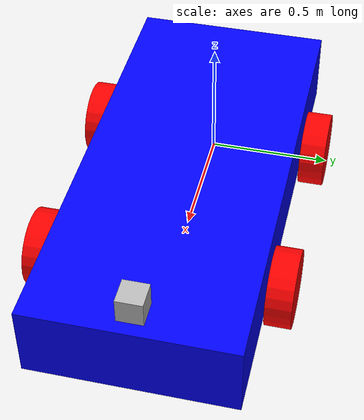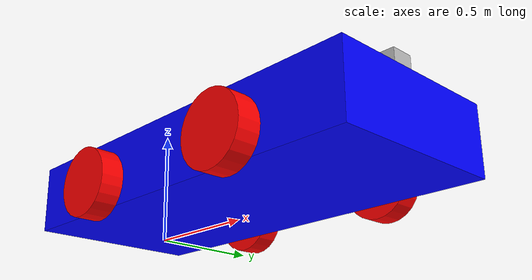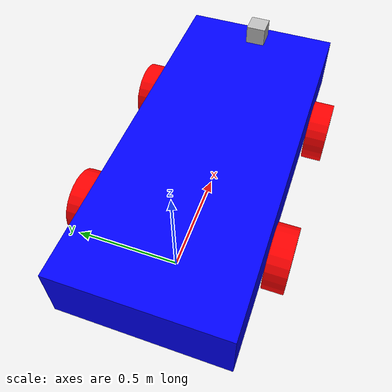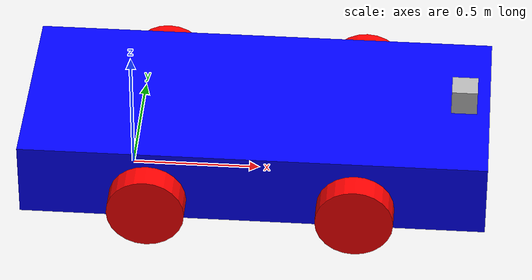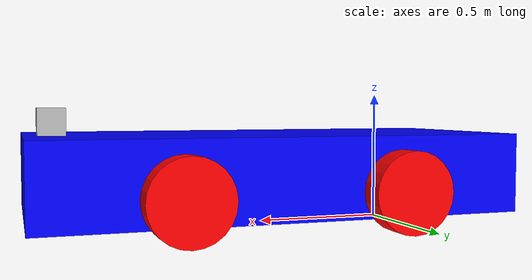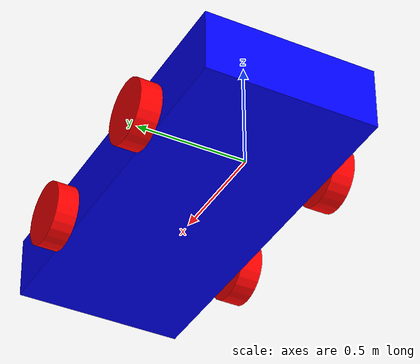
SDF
<?xml version="1.0" ?>
<sdf version="1.9">
        <plugin filename="libignition-gazebo-imu-system.so"
                name="ignition::gazebo::systems::Imu">
        </plugin>

        <plugin filename="libignition-gazebo-contact-system.so"
            name="ignition::gazebo::systems::Contact">
        </plugin>

        <plugin filename="libignition-gazebo-triggered-publisher-system.so"
        name="ignition::gazebo::systems::TriggeredPublisher">
        </plugin>

        <model name='vehicle_blue' canonical_link='base_link'>
            <frame name="lidar_frame" attached_to='base_link'>
                <pose>0.8 0 0.5 0 0 0</pose>
            </frame>

            <link name='base_link'>
                <pose relative_to='__model__'>0.5 0 0.2 0 0 0</pose>
                    <inertial> <!--inertial properties of the link mass, inertia matix-->
                        <mass>1.14395</mass>
                        <inertia>
                            <ixx>0.095329</ixx>
                            <ixy>0</ixy>
                            <ixz>0</ixz>
                            <iyy>0.381317</iyy>
                            <iyz>0</iyz>
                            <izz>0.476646</izz>
                        </inertia>
                    </inertial>
                    <visual name='visual'>
                        <geometry>
                            <box>
                                <size>1.8 0.8 0.3</size>
                            </box>
                        </geometry>
                        <!--let's add color to our link-->
                        <material>
                            <ambient>0.0 0.0 1.0 1</ambient>
                            <diffuse>0.0 0.0 1.0 1</diffuse>
                            <specular>0.0 0.0 1.0 1</specular>
                        </material>
                    </visual>
                    <collision name='collision'>
                        <geometry>
                            <box>
                                <size>1.8 0.8 0.3</size>
                            </box>
                        </geometry>
                    </collision>
                    <sensor name="imu_sensor" type="imu">
                        <always_on>1</always_on>
                        <update_rate>1</update_rate>
                        <visualize>true</visualize>
                        <topic>imu</topic>
                    </sensor>

                    <sensor name='gpu_lidar' type='gpu_lidar'>"
                        <pose relative_to='lidar_frame'>0 0 0 0 0 0</pose>
                        <topic>lidar</topic>
                        <update_rate>10</update_rate>
                        <ray>
                            <scan>
                                <horizontal>
                                    <samples>640</samples>
                                    <resolution>1</resolution>
                                    <min_angle>-1.396263</min_angle>
                                    <max_angle>1.396263</max_angle>
                                </horizontal>
                                <vertical>
                                    <samples>1</samples>
                                    <resolution>0.01</resolution>
                                    <min_angle>0</min_angle>
                                    <max_angle>0</max_angle>
                                </vertical>
                            </scan>
                            <range>
                                <min>0.08</min>
                                <max>10.0</max>
                                <resolution>0.01</resolution>
                            </range>
                        </ray>
                        <always_on>1</always_on>
                        <visualize>true</visualize>
                    </sensor>
                </link>

                <link name="camera_link">
                    <pose relative_to='base_link'>0.8 0.0 0.2 0 0 0</pose>
                    <inertial>
                        <mass>0.1</mass>
                        <inertia>
                            <ixx>0.000166667</ixx>
                            <iyy>0.000166667</iyy>
                            <izz>0.000166667</izz>
                        </inertia>
                    </inertial>

                    <collision name="collision">
                        <geometry>
                            <box>
                                <size>0.1 0.1 0.1</size>
                            </box>
                        </geometry>
                    </collision>
                    <visual name="visual">
                        <geometry>
                            <box>
                                <size>0.1 0.1 0.1</size>
                            </box>
                        </geometry>
                    </visual>

                    <sensor name="camera" type="camera">
                        <camera>
                            <horizontal_fov>1.047</horizontal_fov>
                            <image>
                                <width>380</width>
                                <height>240</height>
                            </image>
                            <clip>
                                <near>0.1</near>
                                <far>100</far>
                            </clip>
                        </camera>
                        <always_on>1</always_on>
                        <update_rate>30</update_rate>
                        <visualize>true</visualize>
                        <topic>camera</topic>
                    </sensor>
                </link>

                <joint name='camera' type='fixed'>
                    <parent>base_link</parent>
                    <child>camera_link</child>
                </joint>

                <link name='left_wheel1'>
                    <pose relative_to="base_link">-0.4 0.46 -0.05 -1.5707 0 0</pose>
                    <inertial>
                        <mass>1</mass>
                        <inertia>
                            <ixx>0.043333</ixx>
                            <ixy>0</ixy>
                            <ixz>0</ixz>
                            <iyy>0.043333</iyy>
                            <iyz>0</iyz>
                            <izz>0.08</izz>
                        </inertia>
                    </inertial>
                    <visual name='visual'>
                        <geometry>
                            <cylinder>
                                <radius>0.15</radius>
                                <length>0.10</length>
                            </cylinder>
                        </geometry>
                        <material>
                            <ambient>1.0 0.0 0.0 1</ambient>
                            <diffuse>1.0 0.0 0.0 1</diffuse>
                            <specular>1.0 0.0 0.0 1</specular>
                        </material>
                    </visual>
                    <collision name='collision'>
                        <geometry>
                            <cylinder>
                                <radius>0.15</radius>
                                <length>0.10</length>
                            </cylinder>
                        </geometry>
                    </collision>
                </link>

                <!--The same as left wheel but with different position-->
                <link name='right_wheel1'>
                    <pose relative_to="base_link">-0.4 -0.46 -0.05 -1.5707 0 0</pose> <!--angles are in radian-->
                    <inertial>
                        <mass>1</mass>
                        <inertia>
                            <ixx>0.043333</ixx>
                            <ixy>0</ixy>
                            <ixz>0</ixz>
                            <iyy>0.043333</iyy>
                            <iyz>0</iyz>
                            <izz>0.08</izz>
                        </inertia>
                    </inertial>
                    <visual name='visual'>
                        <geometry>
                            <cylinder>
                                <radius>0.15</radius>
                                <length>0.10</length>
                            </cylinder>
                        </geometry>
                        <material>
                            <ambient>1.0 0.0 0.0 1</ambient>
                            <diffuse>1.0 0.0 0.0 1</diffuse>
                            <specular>1.0 0.0 0.0 1</specular>
                        </material>
                    </visual>
                    <collision name='collision'>
                        <geometry>
                            <cylinder>
                                <radius>0.15</radius>
                                <length>0.10</length>
                            </cylinder>
                        </geometry>
                    </collision>
                </link>

                <link name='right_wheel2'>
                    <pose relative_to="base_link">0.4 -0.46 -0.05 -1.5707 0 0</pose> <!--angles are in radian-->
                    <inertial>
                        <mass>1</mass>
                        <inertia>
                            <ixx>0.043333</ixx>
                            <ixy>0</ixy>
                            <ixz>0</ixz>
                            <iyy>0.043333</iyy>
                            <iyz>0</iyz>
                            <izz>0.08</izz>
                        </inertia>
                    </inertial>
                    <visual name='visual'>
                        <geometry>
                            <cylinder>
                                <radius>0.15</radius>
                                <length>0.10</length>
                            </cylinder>
                        </geometry>
                        <material>
                            <ambient>1.0 0.0 0.0 1</ambient>
                            <diffuse>1.0 0.0 0.0 1</diffuse>
                            <specular>1.0 0.0 0.0 1</specular>
                        </material>
                    </visual>
                    <collision name='collision'>
                        <geometry>
                            <cylinder>
                                <radius>0.15</radius>
                                <length>0.10</length>
                            </cylinder>
                        </geometry>
                    </collision>
                </link>

                <link name='left_wheel2'>
                    <pose relative_to="base_link">0.4 0.46 -0.05 -1.5707 0 0</pose> <!--angles are in radian-->
                    <inertial>
                        <mass>1</mass>
                        <inertia>
                            <ixx>0.043333</ixx>
                            <ixy>0</ixy>
                            <ixz>0</ixz>
                            <iyy>0.043333</iyy>
                            <iyz>0</iyz>
                            <izz>0.08</izz>
                        </inertia>
                    </inertial>
                    <visual name='visual'>
                        <geometry>
                            <cylinder>
                                <radius>0.15</radius>
                                <length>0.10</length>
                            </cylinder>
                        </geometry>
                        <material>
                            <ambient>1.0 0.0 0.0 1</ambient>
                            <diffuse>1.0 0.0 0.0 1</diffuse>
                            <specular>1.0 0.0 0.0 1</specular>
                        </material>
                    </visual>
                    <collision name='collision'>
                        <geometry>
                            <cylinder>
                                <radius>0.15</radius>
                                <length>0.10</length>
                            </cylinder>
                        </geometry>
                    </collision>
                </link>

                <joint name='left_wheel1_joint' type='revolute'>
                    <pose relative_to='left_wheel1'/>
                    <parent>base_link</parent>
                    <child>left_wheel1</child>
                    <axis>
                        <xyz expressed_in='__model__'>0 1 0</xyz> <!--can be defined as any frame or even arbitrary frames-->
                        <limit>
                            <lower>-1.79769e+308</lower>    <!--negative infinity-->
                            <upper>1.79769e+308</upper>     <!--positive infinity-->
                        </limit>
                    </axis>
                </joint>

                <joint name='left_wheel2_joint' type='revolute'>
                    <pose relative_to='left_wheel2'/>
                    <parent>base_link</parent>
                    <child>left_wheel2</child>
                    <axis>
                        <xyz expressed_in='__model__'>0 1 0</xyz> <!--can be defined as any frame or even arbitrary frames-->
                        <limit>
                            <lower>-1.79769e+308</lower>    <!--negative infinity-->
                            <upper>1.79769e+308</upper>     <!--positive infinity-->
                        </limit>
                    </axis>
                </joint>

                <joint name='right_wheel1_joint' type='revolute'>
                    <pose relative_to='right_wheel1'/>
                    <parent>base_link</parent>
                    <child>right_wheel1</child>
                    <axis>
                        <xyz expressed_in='__model__'>0 1 0</xyz>
                        <limit>
                            <lower>-1.79769e+308</lower>    <!--negative infinity-->
                            <upper>1.79769e+308</upper>     <!--positive infinity-->
                        </limit>
                    </axis>
                </joint>

                <joint name='right_wheel2_joint' type='revolute'>
                    <pose relative_to='right_wheel2'/>
                    <parent>base_link</parent>
                    <child>right_wheel2</child>
                    <axis>
                        <xyz expressed_in='__model__'>0 1 0</xyz>
                        <limit>
                            <lower>-1.79769e+308</lower>    <!--negative infinity-->
                            <upper>1.79769e+308</upper>     <!--positive infinity-->
                        </limit>
                    </axis>
                </joint>

                <plugin
    		    filename="libignition-gazebo-diff-drive-system.so"
    		    name="ignition::gazebo::systems::DiffDrive">
    		    <left_joint>left_wheel1_joint</left_joint>
		    <left_joint>left_wheel2_joint</left_joint>
		    <right_joint>right_wheel1_joint</right_joint>
		    <right_joint>right_wheel2_joint</right_joint>
		    <wheel_separation>0.92</wheel_separation>
		    <wheel_radius>0.15</wheel_radius>
		    <odom_publish_frequency>30</odom_publish_frequency>
		    <topic>cmd_vel</topic>
		    <odom_topic>odom</odom_topic>
		    <odom_frame>odom</odom_frame>
		    <base_link>base_link</base_link>
		    <publish_tf>true</publish_tf>
		</plugin>

            </model>
</sdf>
